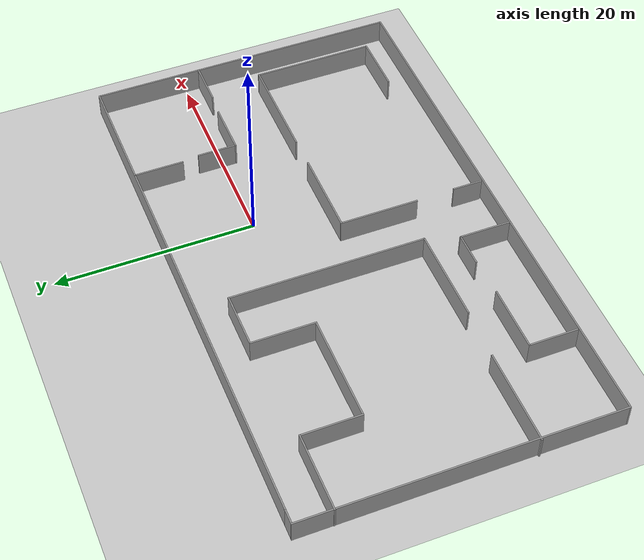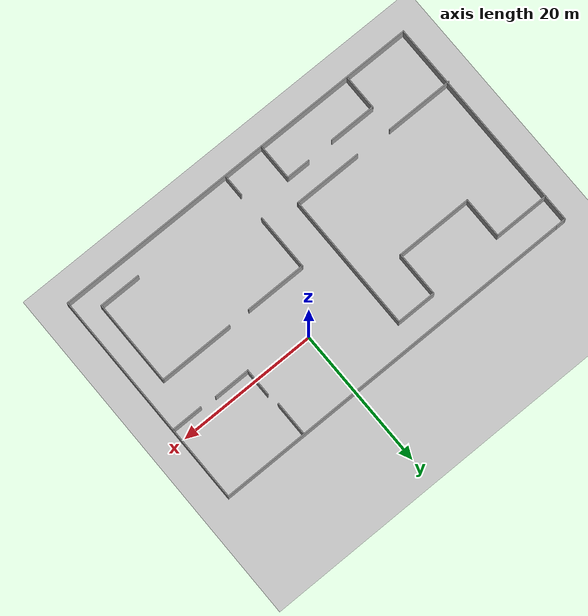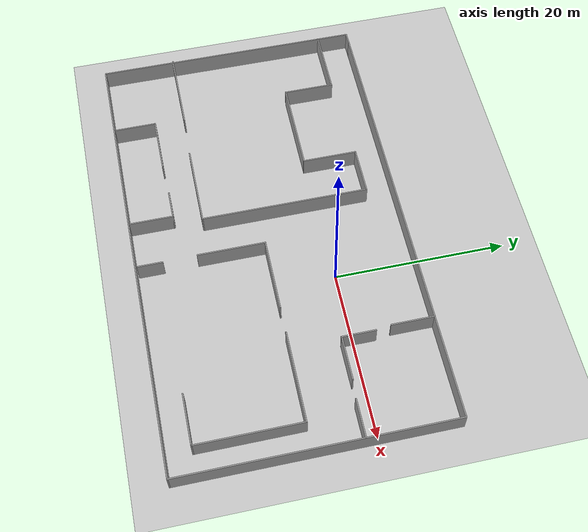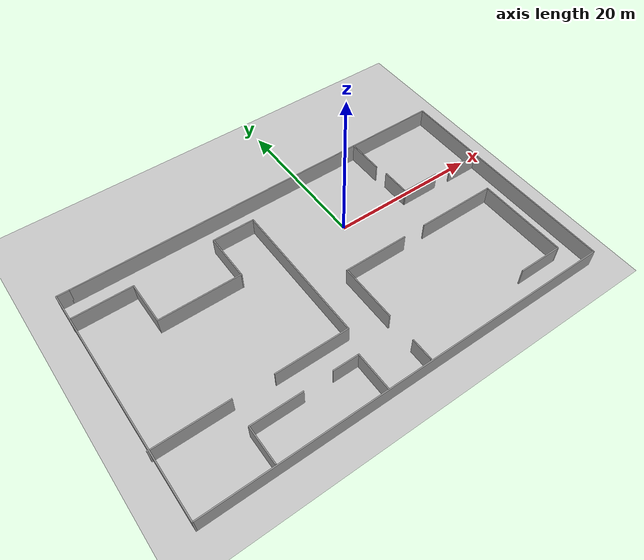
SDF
<sdf version="1.7">
 <world name="default">
  <plugin name="gazebo_ros" filename="libgazebo_ros_init.so"/>
  <plugin name="gazebo_ros_factory" filename="libgazebo_ros_factory.so"/>
  <light name="sun" type="directional">
   <pose>0 0 10 0 -0 0</pose>
   <diffuse>0.8 0.8 0.8 1</diffuse>
   <specular>0.2 0.2 0.2 1</specular>
   <attenuation>
    <range>1000</range>
    <constant>0.9</constant>
    <linear>0.01</linear>
    <quadratic>0.001</quadratic>
   </attenuation>
   <direction>-0.5 0.1 -0.9</direction>
   <spot><inner_angle>0</inner_angle><outer_angle>0</outer_angle><falloff>0</falloff></spot>
  </light>
  <model name="ground_plane">
   <static>1</static>
   <link name="link">
    <collision name="collision">
     <geometry><plane><normal>0 0 1</normal><size>100 100</size></plane></geometry>
     <surface><friction><ode><mu>100</mu><mu2>50</mu2></ode></friction></surface>
    </collision>
    <visual name="visual">
     <cast_shadows>0</cast_shadows>
     <geometry><plane><normal>0 0 1</normal><size>100 100</size></plane></geometry>
     <material>
      <script><uri>file://media/materials/scripts/gazebo.material</uri><name>Gazebo/Grey</name></script>
     </material>
    </visual>
   </link>
  </model>
  <gravity>0 0 -9.8</gravity>
  <magnetic_field>6e-06 2.3e-05 -4.2e-05</magnetic_field>
  <atmosphere type="adiabatic"/>
  <physics type="ode">
   <max_step_size>0.001</max_step_size>
   <real_time_factor>1</real_time_factor>
   <real_time_update_rate>1000</real_time_update_rate>
  </physics>
  <scene><ambient>0.4 0.4 0.4 1</ambient><background>0.7 0.7 0.7 1</background><shadows>1</shadows></scene>
  <audio><device>default</device></audio>
  <spherical_coordinates>
   <surface_model>EARTH_WGS84</surface_model>
   <latitude_deg>0</latitude_deg>
   <longitude_deg>0</longitude_deg>
   <elevation>0</elevation>
   <heading_deg>0</heading_deg>
  </spherical_coordinates>
  <model name="Untitle">
   <pose>-6.72543 -6.46991 0 0 -0 0</pose>
   <link name="Wall_11">
    <collision name="Wall_11_Collision">
     <geometry><box><size>53 0.15 2.5</size></box></geometry>
     <pose>0 0 1.25 0 -0 0</pose>
    </collision>
    <visual name="Wall_11_Visual">
     <pose>0 0 1.25 0 -0 0</pose>
     <geometry><box><size>53 0.15 2.5</size></box></geometry>
     <material>
      <script><uri>file://media/materials/scripts/gazebo.material</uri><name>Gazebo/Grey</name></script>
      <ambient>1 1 1 1</ambient>
     </material>
     <meta><layer>0</layer></meta>
    </visual>
    <pose>0.839972 15.675 0 0 -0 0</pose>
   </link>
   <link name="Wall_12">
    <collision name="Wall_12_Collision">
     <geometry><box><size>31.5 0.15 2.5</size></box></geometry>
     <pose>0 0 1.25 0 -0 0</pose>
    </collision>
    <visual name="Wall_12_Visual">
     <pose>0 0 1.25 0 -0 0</pose>
     <geometry><box><size>31.5 0.15 2.5</size></box></geometry>
     <material>
      <script><uri>file://media/materials/scripts/gazebo.material</uri><name>Gazebo/Grey</name></script>
      <ambient>1 1 1 1</ambient>
     </material>
     <meta><layer>0</layer></meta>
    </visual>
    <pose>27.265 0 0 0 -0 -1.5708</pose>
   </link>
   <link name="Wall_13">
    <collision name="Wall_13_Collision">
     <geometry><box><size>54.5 0.15 2.5</size></box></geometry>
     <pose>0 0 1.25 0 -0 0</pose>
    </collision>
    <visual name="Wall_13_Visual">
     <pose>0 0 1.25 0 -0 0</pose>
     <geometry><box><size>54.5 0.15 2.5</size></box></geometry>
     <material>
      <script><uri>file://media/materials/scripts/gazebo.material</uri><name>Gazebo/Grey</name></script>
      <ambient>1 1 1 1</ambient>
     </material>
     <meta><layer>0</layer></meta>
    </visual>
    <pose>0.089972 -15.675 0 0 -0 3.14159</pose>
   </link>
   <link name="Wall_14">
    <collision name="Wall_14_Collision">
     <geometry><box><size>31.5 0.15 2.5</size></box></geometry>
     <pose>0 0 1.25 0 -0 0</pose>
    </collision>
    <visual name="Wall_14_Visual">
     <pose>0 0 1.25 0 -0 0</pose>
     <geometry><box><size>31.5 0.15 2.5</size></box></geometry>
     <material>
      <script><uri>file://media/materials/scripts/gazebo.material</uri><name>Gazebo/Grey</name></script>
      <ambient>1 1 1 1</ambient>
     </material>
     <meta><layer>0</layer></meta>
    </visual>
    <pose>-27.085 0 0 0 -0 1.5708</pose>
   </link>
   <link name="Wall_16">
    <collision name="Wall_16_Collision">
     <geometry><box><size>1.65 0.15 2.5</size></box></geometry>
     <pose>0 0 1.25 0 -0 0</pose>
    </collision>
    <visual name="Wall_16_Visual">
     <pose>0 0 1.25 0 -0 0</pose>
     <geometry><box><size>1.65 0.15 2.5</size></box></geometry>
     <material>
      <script><uri>file://media/materials/scripts/gazebo.material</uri><name>Gazebo/Grey</name></script>
      <ambient>1 1 1 1</ambient>
     </material>
     <meta><layer>0</layer></meta>
    </visual>
    <pose>-26.335 15.675 0 0 -0 0</pose>
   </link>
   <link name="Wall_18">
    <collision name="Wall_18_Collision">
     <geometry><box><size>8 0.15 2.5</size></box></geometry>
     <pose>0 0 1.25 0 -0 0</pose>
    </collision>
    <visual name="Wall_18_Visual">
     <pose>0 0 1.25 0 -0 0</pose>
     <geometry><box><size>8 0.15 2.5</size></box></geometry>
     <material>
      <script><uri>file://media/materials/scripts/gazebo.material</uri><name>Gazebo/Grey</name></script>
      <ambient>1 1 1 1</ambient>
     </material>
     <meta><layer>0</layer></meta>
    </visual>
    <pose>-23.2032 11.8998 0 0 -0 0</pose>
   </link>
   <link name="Wall_19">
    <collision name="Wall_19_Collision">
     <geometry><box><size>6 0.15 2.5</size></box></geometry>
     <pose>0 0 1.25 0 -0 0</pose>
    </collision>
    <visual name="Wall_19_Visual">
     <pose>0 0 1.25 0 -0 0</pose>
     <geometry><box><size>6 0.15 2.5</size></box></geometry>
     <material>
      <script><uri>file://media/materials/scripts/gazebo.material</uri><name>Gazebo/Grey</name></script>
      <ambient>1 1 1 1</ambient>
     </material>
     <meta><layer>0</layer></meta>
    </visual>
    <pose>-19.2782 8.97479 0 0 -0 -1.5708</pose>
   </link>
   <link name="Wall_20">
    <collision name="Wall_20_Collision">
     <geometry><box><size>11 0.15 2.5</size></box></geometry>
     <pose>0 0 1.25 0 -0 0</pose>
    </collision>
    <visual name="Wall_20_Visual">
     <pose>0 0 1.25 0 -0 0</pose>
     <geometry><box><size>11 0.15 2.5</size></box></geometry>
     <material>
      <script><uri>file://media/materials/scripts/gazebo.material</uri><name>Gazebo/Grey</name></script>
      <ambient>1 1 1 1</ambient>
     </material>
     <meta><layer>0</layer></meta>
    </visual>
    <pose>-13.8532 6.04979 0 0 -0 0</pose>
   </link>
   <link name="Wall_21">
    <collision name="Wall_21_Collision">
     <geometry><box><size>6.5 0.15 2.5</size></box></geometry>
     <pose>0 0 1.25 0 -0 0</pose>
    </collision>
    <visual name="Wall_21_Visual">
     <pose>0 0 1.25 0 -0 0</pose>
     <geometry><box><size>6.5 0.15 2.5</size></box></geometry>
     <material>
      <script><uri>file://media/materials/scripts/gazebo.material</uri><name>Gazebo/Grey</name></script>
      <ambient>1 1 1 1</ambient>
     </material>
     <meta><layer>0</layer></meta>
    </visual>
    <pose>-8.42819 9.22479 0 0 -0 1.5708</pose>
   </link>
   <link name="Wall_22">
    <collision name="Wall_22_Collision">
     <geometry><box><size>5.75 0.15 2.5</size></box></geometry>
     <pose>0 0 1.25 0 -0 0</pose>
    </collision>
    <visual name="Wall_22_Visual">
     <pose>0 0 1.25 0 -0 0</pose>
     <geometry><box><size>5.75 0.15 2.5</size></box></geometry>
     <material>
      <script><uri>file://media/materials/scripts/gazebo.material</uri><name>Gazebo/Grey</name></script>
      <ambient>1 1 1 1</ambient>
     </material>
     <meta><layer>0</layer></meta>
    </visual>
    <pose>-5.62819 12.3998 0 0 -0 0</pose>
   </link>
   <link name="Wall_23">
    <collision name="Wall_23_Collision">
     <geometry><box><size>19.75 0.15 2.5</size></box></geometry>
     <pose>0 0 1.25 0 -0 0</pose>
    </collision>
    <visual name="Wall_23_Visual">
     <pose>0 0 1.25 0 -0 0</pose>
     <geometry><box><size>19.75 0.15 2.5</size></box></geometry>
     <material>
      <script><uri>file://media/materials/scripts/gazebo.material</uri><name>Gazebo/Grey</name></script>
      <ambient>1 1 1 1</ambient>
     </material>
     <meta><layer>0</layer></meta>
    </visual>
    <pose>-2.82819 2.59979 0 0 -0 -1.5708</pose>
   </link>
   <link name="Wall_24">
    <collision name="Wall_24_Collision">
     <geometry><box><size>9.75 0.15 2.5</size></box></geometry>
     <pose>0 0 1.25 0 -0 0</pose>
    </collision>
    <visual name="Wall_24_Visual">
     <pose>0 0 1.25 0 -0 0</pose>
     <geometry><box><size>9.75 0.15 2.5</size></box></geometry>
     <material>
      <script><uri>file://media/materials/scripts/gazebo.material</uri><name>Gazebo/Grey</name></script>
      <ambient>1 1 1 1</ambient>
     </material>
     <meta><layer>0</layer></meta>
    </visual>
    <pose>-7.62819 -7.20021 0 0 -0 3.14159</pose>
   </link>
   <link name="Wall_26">
    <collision name="Wall_26_Collision">
     <geometry><box><size>9.75 0.15 2.5</size></box></geometry>
     <pose>0 0 1.25 0 -0 0</pose>
    </collision>
    <visual name="Wall_26_Visual">
     <pose>0 0 1.25 0 -0 0</pose>
     <geometry><box><size>9.75 0.15 2.5</size></box></geometry>
     <material>
      <script><uri>file://media/materials/scripts/gazebo.material</uri><name>Gazebo/Grey</name></script>
      <ambient>1 1 1 1</ambient>
     </material>
     <meta><layer>0</layer></meta>
    </visual>
    <pose>-22.465 -7.0452 0 0 -0 0</pose>
   </link>
   <link name="Wall_28">
    <collision name="Wall_28_Collision">
     <geometry><box><size>5 0.15 2.5</size></box></geometry>
     <pose>0 0 1.25 0 -0 0</pose>
    </collision>
    <visual name="Wall_28_Visual">
     <pose>0 0 1.25 0 -0 0</pose>
     <geometry><box><size>5 0.15 2.5</size></box></geometry>
     <material>
      <script><uri>file://media/materials/scripts/gazebo.material</uri><name>Gazebo/Grey</name></script>
      <ambient>1 1 1 1</ambient>
     </material>
     <meta><layer>0</layer></meta>
    </visual>
    <pose>-17.826 -13.0678 0 0 -0 1.5708</pose>
   </link>
   <link name="Wall_29">
    <collision name="Wall_29_Collision">
     <geometry><box><size>6.75 0.15 2.5</size></box></geometry>
     <pose>0 0 1.25 0 -0 0</pose>
    </collision>
    <visual name="Wall_29_Visual">
     <pose>0 0 1.25 0 -0 0</pose>
     <geometry><box><size>6.75 0.15 2.5</size></box></geometry>
     <material>
      <script><uri>file://media/materials/scripts/gazebo.material</uri><name>Gazebo/Grey</name></script>
      <ambient>1 1 1 1</ambient>
     </material>
     <meta><layer>0</layer></meta>
    </visual>
    <pose>-14.526 -10.6428 0 0 -0 0</pose>
   </link>
   <link name="Wall_31">
    <collision name="Wall_31_Collision">
     <geometry><box><size>5.25 0.15 2.5</size></box></geometry>
     <pose>0 0 1.25 0 -0 0</pose>
    </collision>
    <visual name="Wall_31_Visual">
     <pose>0 0 1.25 0 -0 0</pose>
     <geometry><box><size>5.25 0.15 2.5</size></box></geometry>
     <material>
      <script><uri>file://media/materials/scripts/gazebo.material</uri><name>Gazebo/Grey</name></script>
      <ambient>1 1 1 1</ambient>
     </material>
     <meta><layer>0</layer></meta>
    </visual>
    <pose>-3.89662 -13.0333 0 0 -0 1.5708</pose>
   </link>
   <link name="Wall_32">
    <collision name="Wall_32_Collision">
     <geometry><box><size>3.5 0.15 2.5</size></box></geometry>
     <pose>0 0 1.25 0 -0 0</pose>
    </collision>
    <visual name="Wall_32_Visual">
     <pose>0 0 1.25 0 -0 0</pose>
     <geometry><box><size>3.5 0.15 2.5</size></box></geometry>
     <material>
      <script><uri>file://media/materials/scripts/gazebo.material</uri><name>Gazebo/Grey</name></script>
      <ambient>1 1 1 1</ambient>
     </material>
     <meta><layer>0</layer></meta>
    </visual>
    <pose>-5.57163 -10.4833 0 0 -0 3.14159</pose>
   </link>
   <link name="Wall_34">
    <collision name="Wall_34_Collision">
     <geometry><box><size>3 0.15 2.5</size></box></geometry>
     <pose>0 0 1.25 0 -0 0</pose>
    </collision>
    <visual name="Wall_34_Visual">
     <pose>0 0 1.25 0 -0 0</pose>
     <geometry><box><size>3 0.15 2.5</size></box></geometry>
     <material>
      <script><uri>file://media/materials/scripts/gazebo.material</uri><name>Gazebo/Grey</name></script>
      <ambient>1 1 1 1</ambient>
     </material>
     <meta><layer>0</layer></meta>
    </visual>
    <pose>1.98265 -13.9773 0 0 -0 1.5708</pose>
   </link>
   <link name="Wall_36">
    <collision name="Wall_36_Collision">
     <geometry><box><size>8 0.15 2.5</size></box></geometry>
     <pose>0 0 1.25 0 -0 0</pose>
    </collision>
    <visual name="Wall_36_Visual">
     <pose>0 0 1.25 0 -0 0</pose>
     <geometry><box><size>8 0.15 2.5</size></box></geometry>
     <material>
      <script><uri>file://media/materials/scripts/gazebo.material</uri><name>Gazebo/Grey</name></script>
      <ambient>1 1 1 1</ambient>
     </material>
     <meta><layer>0</layer></meta>
    </visual>
    <pose>1.8922 -4.60312 0 0 -0 1.5708</pose>
   </link>
   <link name="Wall_37">
    <collision name="Wall_37_Collision">
     <geometry><box><size>8.75 0.15 2.5</size></box></geometry>
     <pose>0 0 1.25 0 -0 0</pose>
    </collision>
    <visual name="Wall_37_Visual">
     <pose>0 0 1.25 0 -0 0</pose>
     <geometry><box><size>8.75 0.15 2.5</size></box></geometry>
     <material>
      <script><uri>file://media/materials/scripts/gazebo.material</uri><name>Gazebo/Grey</name></script>
      <ambient>1 1 1 1</ambient>
     </material>
     <meta><layer>0</layer></meta>
    </visual>
    <pose>6.1922 -0.678124 0 0 -0 0</pose>
   </link>
   <link name="Wall_39">
    <collision name="Wall_39_Collision">
     <geometry><box><size>10.75 0.15 2.5</size></box></geometry>
     <pose>0 0 1.25 0 -0 0</pose>
    </collision>
    <visual name="Wall_39_Visual">
     <pose>0 0 1.25 0 -0 0</pose>
     <geometry><box><size>10.75 0.15 2.5</size></box></geometry>
     <material>
      <script><uri>file://media/materials/scripts/gazebo.material</uri><name>Gazebo/Grey</name></script>
      <ambient>1 1 1 1</ambient>
     </material>
     <meta><layer>0</layer></meta>
    </visual>
    <pose>18.9507 -0.658944 0 0 -0 0</pose>
   </link>
   <link name="Wall_40">
    <collision name="Wall_40_Collision">
     <geometry><box><size>12.25 0.15 2.5</size></box></geometry>
     <pose>0 0 1.25 0 -0 0</pose>
    </collision>
    <visual name="Wall_40_Visual">
     <pose>0 0 1.25 0 -0 0</pose>
     <geometry><box><size>12.25 0.15 2.5</size></box></geometry>
     <material>
      <script><uri>file://media/materials/scripts/gazebo.material</uri><name>Gazebo/Grey</name></script>
      <ambient>1 1 1 1</ambient>
     </material>
     <meta><layer>0</layer></meta>
    </visual>
    <pose>24.2507 -6.70894 0 0 -0 -1.5708</pose>
   </link>
   <link name="Wall_41">
    <collision name="Wall_41_Collision">
     <geometry><box><size>6 0.15 2.5</size></box></geometry>
     <pose>0 0 1.25 0 -0 0</pose>
    </collision>
    <visual name="Wall_41_Visual">
     <pose>0 0 1.25 0 -0 0</pose>
     <geometry><box><size>6 0.15 2.5</size></box></geometry>
     <material>
      <script><uri>file://media/materials/scripts/gazebo.material</uri><name>Gazebo/Grey</name></script>
      <ambient>1 1 1 1</ambient>
     </material>
     <meta><layer>0</layer></meta>
    </visual>
    <pose>21.3257 -12.7589 0 0 -0 3.14159</pose>
   </link>
   <link name="Wall_43">
    <collision name="Wall_43_Collision">
     <geometry><box><size>5 0.15 2.5</size></box></geometry>
     <pose>0 0 1.25 0 -0 0</pose>
    </collision>
    <visual name="Wall_43_Visual">
     <pose>0 0 1.25 0 -0 0</pose>
     <geometry><box><size>5 0.15 2.5</size></box></geometry>
     <material>
      <script><uri>file://media/materials/scripts/gazebo.material</uri><name>Gazebo/Grey</name></script>
      <ambient>1 1 1 1</ambient>
     </material>
     <meta><layer>0</layer></meta>
    </visual>
    <pose>15.1884 13.1971 0 0 -0 -1.5708</pose>
   </link>
   <link name="Wall_45">
    <collision name="Wall_45_Collision">
     <geometry><box><size>4.5 0.15 2.5</size></box></geometry>
     <pose>0 0 1.25 0 -0 0</pose>
    </collision>
    <visual name="Wall_45_Visual">
     <pose>0 0 1.25 0 -0 0</pose>
     <geometry><box><size>4.5 0.15 2.5</size></box></geometry>
     <material>
      <script><uri>file://media/materials/scripts/gazebo.material</uri><name>Gazebo/Grey</name></script>
      <ambient>1 1 1 1</ambient>
     </material>
     <meta><layer>0</layer></meta>
    </visual>
    <pose>25.0433 4.94898 0 0 -0 3.14159</pose>
   </link>
   <link name="Wall_47">
    <collision name="Wall_47_Collision">
     <geometry><box><size>4 0.15 2.5</size></box></geometry>
     <pose>0 0 1.25 0 -0 0</pose>
    </collision>
    <visual name="Wall_47_Visual">
     <pose>0 0 1.25 0 -0 0</pose>
     <geometry><box><size>4 0.15 2.5</size></box></geometry>
     <material>
      <script><uri>file://media/materials/scripts/gazebo.material</uri><name>Gazebo/Grey</name></script>
      <ambient>1 1 1 1</ambient>
     </material>
     <meta><layer>0</layer></meta>
    </visual>
    <pose>15.4597 7.05488 0 0 -0 1.5708</pose>
   </link>
   <link name="Wall_49">
    <collision name="Wall_49_Collision">
     <geometry><box><size>5.25 0.15 2.5</size></box></geometry>
     <pose>0 0 1.25 0 -0 0</pose>
    </collision>
    <visual name="Wall_49_Visual">
     <pose>0 0 1.25 0 -0 0</pose>
     <geometry><box><size>5.25 0.15 2.5</size></box></geometry>
     <material>
      <script><uri>file://media/materials/scripts/gazebo.material</uri><name>Gazebo/Grey</name></script>
      <ambient>1 1 1 1</ambient>
     </material>
     <meta><layer>0</layer></meta>
    </visual>
    <pose>18.0097 5.12988 0 0 -0 0</pose>
   </link>
   <static>1</static>
  </model>
 </world>
</sdf>
